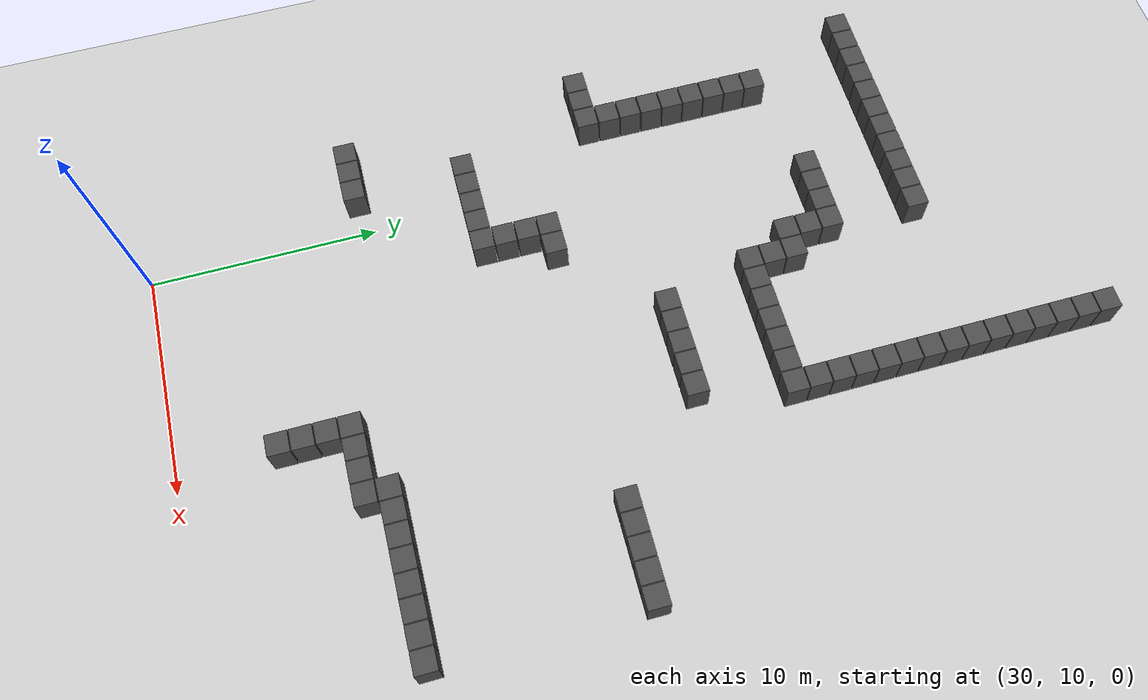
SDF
<sdf version="1.6">
 <world name="maze_world">
  <model name="ground_plane">
   <static>true</static>
   <pose>25.0 25.0 0 0 0 0</pose>
   <link name="link">
    <collision name="collision">
     <geometry><plane><normal>0 0 1</normal><size>50.0 50.0</size></plane></geometry>
    </collision>
    <visual name="visual">
     <geometry><plane><normal>0 0 1</normal><size>50.0 50.0</size></plane></geometry>
     <material><ambient>0.8 0.8 0.8 1</ambient><diffuse>0.8 0.8 0.8 1</diffuse></material>
    </visual>
   </link>
  </model>
  <model name="wall_0">
   <static>true</static>
   <pose>42.500 49.500 0.750 0 0 0</pose>
   <link name="link">
    <collision name="collision"><geometry><box><size>0.950 0.950 1.500</size></box></geometry></collision>
    <visual name="visual">
     <geometry><box><size>0.950 0.950 1.500</size></box></geometry>
     <material><ambient>0.2 0.2 0.2 1</ambient><diffuse>0.3 0.3 0.3 1</diffuse></material>
    </visual>
   </link>
  </model>
  <model name="wall_1">
   <static>true</static>
   <pose>42.500 48.500 0.750 0 0 0</pose>
   <link name="link">
    <collision name="collision"><geometry><box><size>0.950 0.950 1.500</size></box></geometry></collision>
    <visual name="visual">
     <geometry><box><size>0.950 0.950 1.500</size></box></geometry>
     <material><ambient>0.2 0.2 0.2 1</ambient><diffuse>0.3 0.3 0.3 1</diffuse></material>
    </visual>
   </link>
  </model>
  <model name="wall_2">
   <static>true</static>
   <pose>42.500 47.500 0.750 0 0 0</pose>
   <link name="link">
    <collision name="collision"><geometry><box><size>0.950 0.950 1.500</size></box></geometry></collision>
    <visual name="visual">
     <geometry><box><size>0.950 0.950 1.500</size></box></geometry>
     <material><ambient>0.2 0.2 0.2 1</ambient><diffuse>0.3 0.3 0.3 1</diffuse></material>
    </visual>
   </link>
  </model>
  <model name="wall_3">
   <static>true</static>
   <pose>42.500 46.500 0.750 0 0 0</pose>
   <link name="link">
    <collision name="collision"><geometry><box><size>0.950 0.950 1.500</size></box></geometry></collision>
    <visual name="visual">
     <geometry><box><size>0.950 0.950 1.500</size></box></geometry>
     <material><ambient>0.2 0.2 0.2 1</ambient><diffuse>0.3 0.3 0.3 1</diffuse></material>
    </visual>
   </link>
  </model>
  <model name="wall_5">
   <static>true</static>
   <pose>42.500 45.500 0.750 0 0 0</pose>
   <link name="link">
    <collision name="collision"><geometry><box><size>0.950 0.950 1.500</size></box></geometry></collision>
    <visual name="visual">
     <geometry><box><size>0.950 0.950 1.500</size></box></geometry>
     <material><ambient>0.2 0.2 0.2 1</ambient><diffuse>0.3 0.3 0.3 1</diffuse></material>
    </visual>
   </link>
  </model>
  <model name="wall_7">
   <static>true</static>
   <pose>42.500 44.500 0.750 0 0 0</pose>
   <link name="link">
    <collision name="collision"><geometry><box><size>0.950 0.950 1.500</size></box></geometry></collision>
    <visual name="visual">
     <geometry><box><size>0.950 0.950 1.500</size></box></geometry>
     <material><ambient>0.2 0.2 0.2 1</ambient><diffuse>0.3 0.3 0.3 1</diffuse></material>
    </visual>
   </link>
  </model>
  <model name="wall_10">
   <static>true</static>
   <pose>25.500 43.500 0.750 0 0 0</pose>
   <link name="link">
    <collision name="collision"><geometry><box><size>0.950 0.950 1.500</size></box></geometry></collision>
    <visual name="visual">
     <geometry><box><size>0.950 0.950 1.500</size></box></geometry>
     <material><ambient>0.2 0.2 0.2 1</ambient><diffuse>0.3 0.3 0.3 1</diffuse></material>
    </visual>
   </link>
  </model>
  <model name="wall_11">
   <static>true</static>
   <pose>26.500 43.500 0.750 0 0 0</pose>
   <link name="link">
    <collision name="collision"><geometry><box><size>0.950 0.950 1.500</size></box></geometry></collision>
    <visual name="visual">
     <geometry><box><size>0.950 0.950 1.500</size></box></geometry>
     <material><ambient>0.2 0.2 0.2 1</ambient><diffuse>0.3 0.3 0.3 1</diffuse></material>
    </visual>
   </link>
  </model>
  <model name="wall_12">
   <static>true</static>
   <pose>27.500 43.500 0.750 0 0 0</pose>
   <link name="link">
    <collision name="collision"><geometry><box><size>0.950 0.950 1.500</size></box></geometry></collision>
    <visual name="visual">
     <geometry><box><size>0.950 0.950 1.500</size></box></geometry>
     <material><ambient>0.2 0.2 0.2 1</ambient><diffuse>0.3 0.3 0.3 1</diffuse></material>
    </visual>
   </link>
  </model>
  <model name="wall_13">
   <static>true</static>
   <pose>28.500 43.500 0.750 0 0 0</pose>
   <link name="link">
    <collision name="collision"><geometry><box><size>0.950 0.950 1.500</size></box></geometry></collision>
    <visual name="visual">
     <geometry><box><size>0.950 0.950 1.500</size></box></geometry>
     <material><ambient>0.2 0.2 0.2 1</ambient><diffuse>0.3 0.3 0.3 1</diffuse></material>
    </visual>
   </link>
  </model>
  <model name="wall_14">
   <static>true</static>
   <pose>29.500 43.500 0.750 0 0 0</pose>
   <link name="link">
    <collision name="collision"><geometry><box><size>0.950 0.950 1.500</size></box></geometry></collision>
    <visual name="visual">
     <geometry><box><size>0.950 0.950 1.500</size></box></geometry>
     <material><ambient>0.2 0.2 0.2 1</ambient><diffuse>0.3 0.3 0.3 1</diffuse></material>
    </visual>
   </link>
  </model>
  <model name="wall_15">
   <static>true</static>
   <pose>30.500 43.500 0.750 0 0 0</pose>
   <link name="link">
    <collision name="collision"><geometry><box><size>0.950 0.950 1.500</size></box></geometry></collision>
    <visual name="visual">
     <geometry><box><size>0.950 0.950 1.500</size></box></geometry>
     <material><ambient>0.2 0.2 0.2 1</ambient><diffuse>0.3 0.3 0.3 1</diffuse></material>
    </visual>
   </link>
  </model>
  <model name="wall_16">
   <static>true</static>
   <pose>31.500 43.500 0.750 0 0 0</pose>
   <link name="link">
    <collision name="collision"><geometry><box><size>0.950 0.950 1.500</size></box></geometry></collision>
    <visual name="visual">
     <geometry><box><size>0.950 0.950 1.500</size></box></geometry>
     <material><ambient>0.2 0.2 0.2 1</ambient><diffuse>0.3 0.3 0.3 1</diffuse></material>
    </visual>
   </link>
  </model>
  <model name="wall_17">
   <static>true</static>
   <pose>32.500 43.500 0.750 0 0 0</pose>
   <link name="link">
    <collision name="collision"><geometry><box><size>0.950 0.950 1.500</size></box></geometry></collision>
    <visual name="visual">
     <geometry><box><size>0.950 0.950 1.500</size></box></geometry>
     <material><ambient>0.2 0.2 0.2 1</ambient><diffuse>0.3 0.3 0.3 1</diffuse></material>
    </visual>
   </link>
  </model>
  <model name="wall_18">
   <static>true</static>
   <pose>33.500 43.500 0.750 0 0 0</pose>
   <link name="link">
    <collision name="collision"><geometry><box><size>0.950 0.950 1.500</size></box></geometry></collision>
    <visual name="visual">
     <geometry><box><size>0.950 0.950 1.500</size></box></geometry>
     <material><ambient>0.2 0.2 0.2 1</ambient><diffuse>0.3 0.3 0.3 1</diffuse></material>
    </visual>
   </link>
  </model>
  <model name="wall_19">
   <static>true</static>
   <pose>34.500 43.500 0.750 0 0 0</pose>
   <link name="link">
    <collision name="collision"><geometry><box><size>0.950 0.950 1.500</size></box></geometry></collision>
    <visual name="visual">
     <geometry><box><size>0.950 0.950 1.500</size></box></geometry>
     <material><ambient>0.2 0.2 0.2 1</ambient><diffuse>0.3 0.3 0.3 1</diffuse></material>
    </visual>
   </link>
  </model>
  <model name="wall_20">
   <static>true</static>
   <pose>35.500 43.500 0.750 0 0 0</pose>
   <link name="link">
    <collision name="collision"><geometry><box><size>0.950 0.950 1.500</size></box></geometry></collision>
    <visual name="visual">
     <geometry><box><size>0.950 0.950 1.500</size></box></geometry>
     <material><ambient>0.2 0.2 0.2 1</ambient><diffuse>0.3 0.3 0.3 1</diffuse></material>
    </visual>
   </link>
  </model>
  <model name="wall_21">
   <static>true</static>
   <pose>42.500 43.500 0.750 0 0 0</pose>
   <link name="link">
    <collision name="collision"><geometry><box><size>0.950 0.950 1.500</size></box></geometry></collision>
    <visual name="visual">
     <geometry><box><size>0.950 0.950 1.500</size></box></geometry>
     <material><ambient>0.2 0.2 0.2 1</ambient><diffuse>0.3 0.3 0.3 1</diffuse></material>
    </visual>
   </link>
  </model>
  <model name="wall_27">
   <static>true</static>
   <pose>42.500 42.500 0.750 0 0 0</pose>
   <link name="link">
    <collision name="collision"><geometry><box><size>0.950 0.950 1.500</size></box></geometry></collision>
    <visual name="visual">
     <geometry><box><size>0.950 0.950 1.500</size></box></geometry>
     <material><ambient>0.2 0.2 0.2 1</ambient><diffuse>0.3 0.3 0.3 1</diffuse></material>
    </visual>
   </link>
  </model>
  <model name="wall_30">
   <static>true</static>
   <pose>42.500 41.500 0.750 0 0 0</pose>
   <link name="link">
    <collision name="collision"><geometry><box><size>0.950 0.950 1.500</size></box></geometry></collision>
    <visual name="visual">
     <geometry><box><size>0.950 0.950 1.500</size></box></geometry>
     <material><ambient>0.2 0.2 0.2 1</ambient><diffuse>0.3 0.3 0.3 1</diffuse></material>
    </visual>
   </link>
  </model>
  <model name="wall_33">
   <static>true</static>
   <pose>42.500 40.500 0.750 0 0 0</pose>
   <link name="link">
    <collision name="collision"><geometry><box><size>0.950 0.950 1.500</size></box></geometry></collision>
    <visual name="visual">
     <geometry><box><size>0.950 0.950 1.500</size></box></geometry>
     <material><ambient>0.2 0.2 0.2 1</ambient><diffuse>0.3 0.3 0.3 1</diffuse></material>
    </visual>
   </link>
  </model>
  <model name="wall_37">
   <static>true</static>
   <pose>32.500 39.500 0.750 0 0 0</pose>
   <link name="link">
    <collision name="collision"><geometry><box><size>0.950 0.950 1.500</size></box></geometry></collision>
    <visual name="visual">
     <geometry><box><size>0.950 0.950 1.500</size></box></geometry>
     <material><ambient>0.2 0.2 0.2 1</ambient><diffuse>0.3 0.3 0.3 1</diffuse></material>
    </visual>
   </link>
  </model>
  <model name="wall_38">
   <static>true</static>
   <pose>33.500 39.500 0.750 0 0 0</pose>
   <link name="link">
    <collision name="collision"><geometry><box><size>0.950 0.950 1.500</size></box></geometry></collision>
    <visual name="visual">
     <geometry><box><size>0.950 0.950 1.500</size></box></geometry>
     <material><ambient>0.2 0.2 0.2 1</ambient><diffuse>0.3 0.3 0.3 1</diffuse></material>
    </visual>
   </link>
  </model>
  <model name="wall_39">
   <static>true</static>
   <pose>34.500 39.500 0.750 0 0 0</pose>
   <link name="link">
    <collision name="collision"><geometry><box><size>0.950 0.950 1.500</size></box></geometry></collision>
    <visual name="visual">
     <geometry><box><size>0.950 0.950 1.500</size></box></geometry>
     <material><ambient>0.2 0.2 0.2 1</ambient><diffuse>0.3 0.3 0.3 1</diffuse></material>
    </visual>
   </link>
  </model>
  <model name="wall_40">
   <static>true</static>
   <pose>35.500 39.500 0.750 0 0 0</pose>
   <link name="link">
    <collision name="collision"><geometry><box><size>0.950 0.950 1.500</size></box></geometry></collision>
    <visual name="visual">
     <geometry><box><size>0.950 0.950 1.500</size></box></geometry>
     <material><ambient>0.2 0.2 0.2 1</ambient><diffuse>0.3 0.3 0.3 1</diffuse></material>
    </visual>
   </link>
  </model>
  <model name="wall_41">
   <static>true</static>
   <pose>42.500 39.500 0.750 0 0 0</pose>
   <link name="link">
    <collision name="collision"><geometry><box><size>0.950 0.950 1.500</size></box></geometry></collision>
    <visual name="visual">
     <geometry><box><size>0.950 0.950 1.500</size></box></geometry>
     <material><ambient>0.2 0.2 0.2 1</ambient><diffuse>0.3 0.3 0.3 1</diffuse></material>
    </visual>
   </link>
  </model>
  <model name="wall_55">
   <static>true</static>
   <pose>27.500 38.500 0.750 0 0 0</pose>
   <link name="link">
    <collision name="collision"><geometry><box><size>0.950 0.950 1.500</size></box></geometry></collision>
    <visual name="visual">
     <geometry><box><size>0.950 0.950 1.500</size></box></geometry>
     <material><ambient>0.2 0.2 0.2 1</ambient><diffuse>0.3 0.3 0.3 1</diffuse></material>
    </visual>
   </link>
  </model>
  <model name="wall_56">
   <static>true</static>
   <pose>35.500 38.500 0.750 0 0 0</pose>
   <link name="link">
    <collision name="collision"><geometry><box><size>0.950 0.950 1.500</size></box></geometry></collision>
    <visual name="visual">
     <geometry><box><size>0.950 0.950 1.500</size></box></geometry>
     <material><ambient>0.2 0.2 0.2 1</ambient><diffuse>0.3 0.3 0.3 1</diffuse></material>
    </visual>
   </link>
  </model>
  <model name="wall_57">
   <static>true</static>
   <pose>42.500 38.500 0.750 0 0 0</pose>
   <link name="link">
    <collision name="collision"><geometry><box><size>0.950 0.950 1.500</size></box></geometry></collision>
    <visual name="visual">
     <geometry><box><size>0.950 0.950 1.500</size></box></geometry>
     <material><ambient>0.2 0.2 0.2 1</ambient><diffuse>0.3 0.3 0.3 1</diffuse></material>
    </visual>
   </link>
  </model>
  <model name="wall_62">
   <static>true</static>
   <pose>27.500 37.500 0.750 0 0 0</pose>
   <link name="link">
    <collision name="collision"><geometry><box><size>0.950 0.950 1.500</size></box></geometry></collision>
    <visual name="visual">
     <geometry><box><size>0.950 0.950 1.500</size></box></geometry>
     <material><ambient>0.2 0.2 0.2 1</ambient><diffuse>0.3 0.3 0.3 1</diffuse></material>
    </visual>
   </link>
  </model>
  <model name="wall_63">
   <static>true</static>
   <pose>35.500 37.500 0.750 0 0 0</pose>
   <link name="link">
    <collision name="collision"><geometry><box><size>0.950 0.950 1.500</size></box></geometry></collision>
    <visual name="visual">
     <geometry><box><size>0.950 0.950 1.500</size></box></geometry>
     <material><ambient>0.2 0.2 0.2 1</ambient><diffuse>0.3 0.3 0.3 1</diffuse></material>
    </visual>
   </link>
  </model>
  <model name="wall_64">
   <static>true</static>
   <pose>36.500 37.500 0.750 0 0 0</pose>
   <link name="link">
    <collision name="collision"><geometry><box><size>0.950 0.950 1.500</size></box></geometry></collision>
    <visual name="visual">
     <geometry><box><size>0.950 0.950 1.500</size></box></geometry>
     <material><ambient>0.2 0.2 0.2 1</ambient><diffuse>0.3 0.3 0.3 1</diffuse></material>
    </visual>
   </link>
  </model>
  <model name="wall_65">
   <static>true</static>
   <pose>42.500 37.500 0.750 0 0 0</pose>
   <link name="link">
    <collision name="collision"><geometry><box><size>0.950 0.950 1.500</size></box></geometry></collision>
    <visual name="visual">
     <geometry><box><size>0.950 0.950 1.500</size></box></geometry>
     <material><ambient>0.2 0.2 0.2 1</ambient><diffuse>0.3 0.3 0.3 1</diffuse></material>
    </visual>
   </link>
  </model>
  <model name="wall_67">
   <static>true</static>
   <pose>27.500 36.500 0.750 0 0 0</pose>
   <link name="link">
    <collision name="collision"><geometry><box><size>0.950 0.950 1.500</size></box></geometry></collision>
    <visual name="visual">
     <geometry><box><size>0.950 0.950 1.500</size></box></geometry>
     <material><ambient>0.2 0.2 0.2 1</ambient><diffuse>0.3 0.3 0.3 1</diffuse></material>
    </visual>
   </link>
  </model>
  <model name="wall_68">
   <static>true</static>
   <pose>36.500 36.500 0.750 0 0 0</pose>
   <link name="link">
    <collision name="collision"><geometry><box><size>0.950 0.950 1.500</size></box></geometry></collision>
    <visual name="visual">
     <geometry><box><size>0.950 0.950 1.500</size></box></geometry>
     <material><ambient>0.2 0.2 0.2 1</ambient><diffuse>0.3 0.3 0.3 1</diffuse></material>
    </visual>
   </link>
  </model>
  <model name="wall_69">
   <static>true</static>
   <pose>42.500 36.500 0.750 0 0 0</pose>
   <link name="link">
    <collision name="collision"><geometry><box><size>0.950 0.950 1.500</size></box></geometry></collision>
    <visual name="visual">
     <geometry><box><size>0.950 0.950 1.500</size></box></geometry>
     <material><ambient>0.2 0.2 0.2 1</ambient><diffuse>0.3 0.3 0.3 1</diffuse></material>
    </visual>
   </link>
  </model>
  <model name="wall_71">
   <static>true</static>
   <pose>27.500 35.500 0.750 0 0 0</pose>
   <link name="link">
    <collision name="collision"><geometry><box><size>0.950 0.950 1.500</size></box></geometry></collision>
    <visual name="visual">
     <geometry><box><size>0.950 0.950 1.500</size></box></geometry>
     <material><ambient>0.2 0.2 0.2 1</ambient><diffuse>0.3 0.3 0.3 1</diffuse></material>
    </visual>
   </link>
  </model>
  <model name="wall_72">
   <static>true</static>
   <pose>36.500 35.500 0.750 0 0 0</pose>
   <link name="link">
    <collision name="collision"><geometry><box><size>0.950 0.950 1.500</size></box></geometry></collision>
    <visual name="visual">
     <geometry><box><size>0.950 0.950 1.500</size></box></geometry>
     <material><ambient>0.2 0.2 0.2 1</ambient><diffuse>0.3 0.3 0.3 1</diffuse></material>
    </visual>
   </link>
  </model>
  <model name="wall_73">
   <static>true</static>
   <pose>37.500 35.500 0.750 0 0 0</pose>
   <link name="link">
    <collision name="collision"><geometry><box><size>0.950 0.950 1.500</size></box></geometry></collision>
    <visual name="visual">
     <geometry><box><size>0.950 0.950 1.500</size></box></geometry>
     <material><ambient>0.2 0.2 0.2 1</ambient><diffuse>0.3 0.3 0.3 1</diffuse></material>
    </visual>
   </link>
  </model>
  <model name="wall_74">
   <static>true</static>
   <pose>38.500 35.500 0.750 0 0 0</pose>
   <link name="link">
    <collision name="collision"><geometry><box><size>0.950 0.950 1.500</size></box></geometry></collision>
    <visual name="visual">
     <geometry><box><size>0.950 0.950 1.500</size></box></geometry>
     <material><ambient>0.2 0.2 0.2 1</ambient><diffuse>0.3 0.3 0.3 1</diffuse></material>
    </visual>
   </link>
  </model>
  <model name="wall_75">
   <static>true</static>
   <pose>39.500 35.500 0.750 0 0 0</pose>
   <link name="link">
    <collision name="collision"><geometry><box><size>0.950 0.950 1.500</size></box></geometry></collision>
    <visual name="visual">
     <geometry><box><size>0.950 0.950 1.500</size></box></geometry>
     <material><ambient>0.2 0.2 0.2 1</ambient><diffuse>0.3 0.3 0.3 1</diffuse></material>
    </visual>
   </link>
  </model>
  <model name="wall_76">
   <static>true</static>
   <pose>40.500 35.500 0.750 0 0 0</pose>
   <link name="link">
    <collision name="collision"><geometry><box><size>0.950 0.950 1.500</size></box></geometry></collision>
    <visual name="visual">
     <geometry><box><size>0.950 0.950 1.500</size></box></geometry>
     <material><ambient>0.2 0.2 0.2 1</ambient><diffuse>0.3 0.3 0.3 1</diffuse></material>
    </visual>
   </link>
  </model>
  <model name="wall_77">
   <static>true</static>
   <pose>41.500 35.500 0.750 0 0 0</pose>
   <link name="link">
    <collision name="collision"><geometry><box><size>0.950 0.950 1.500</size></box></geometry></collision>
    <visual name="visual">
     <geometry><box><size>0.950 0.950 1.500</size></box></geometry>
     <material><ambient>0.2 0.2 0.2 1</ambient><diffuse>0.3 0.3 0.3 1</diffuse></material>
    </visual>
   </link>
  </model>
  <model name="wall_78">
   <static>true</static>
   <pose>42.500 35.500 0.750 0 0 0</pose>
   <link name="link">
    <collision name="collision"><geometry><box><size>0.950 0.950 1.500</size></box></geometry></collision>
    <visual name="visual">
     <geometry><box><size>0.950 0.950 1.500</size></box></geometry>
     <material><ambient>0.2 0.2 0.2 1</ambient><diffuse>0.3 0.3 0.3 1</diffuse></material>
    </visual>
   </link>
  </model>
  <model name="wall_80">
   <static>true</static>
   <pose>27.500 34.500 0.750 0 0 0</pose>
   <link name="link">
    <collision name="collision"><geometry><box><size>0.950 0.950 1.500</size></box></geometry></collision>
    <visual name="visual">
     <geometry><box><size>0.950 0.950 1.500</size></box></geometry>
     <material><ambient>0.2 0.2 0.2 1</ambient><diffuse>0.3 0.3 0.3 1</diffuse></material>
    </visual>
   </link>
  </model>
  <model name="wall_82">
   <static>true</static>
   <pose>27.500 33.500 0.750 0 0 0</pose>
   <link name="link">
    <collision name="collision"><geometry><box><size>0.950 0.950 1.500</size></box></geometry></collision>
    <visual name="visual">
     <geometry><box><size>0.950 0.950 1.500</size></box></geometry>
     <material><ambient>0.2 0.2 0.2 1</ambient><diffuse>0.3 0.3 0.3 1</diffuse></material>
    </visual>
   </link>
  </model>
  <model name="wall_84">
   <static>true</static>
   <pose>27.500 32.500 0.750 0 0 0</pose>
   <link name="link">
    <collision name="collision"><geometry><box><size>0.950 0.950 1.500</size></box></geometry></collision>
    <visual name="visual">
     <geometry><box><size>0.950 0.950 1.500</size></box></geometry>
     <material><ambient>0.2 0.2 0.2 1</ambient><diffuse>0.3 0.3 0.3 1</diffuse></material>
    </visual>
   </link>
  </model>
  <model name="wall_86">
   <static>true</static>
   <pose>27.500 31.500 0.750 0 0 0</pose>
   <link name="link">
    <collision name="collision"><geometry><box><size>0.950 0.950 1.500</size></box></geometry></collision>
    <visual name="visual">
     <geometry><box><size>0.950 0.950 1.500</size></box></geometry>
     <material><ambient>0.2 0.2 0.2 1</ambient><diffuse>0.3 0.3 0.3 1</diffuse></material>
    </visual>
   </link>
  </model>
  <model name="wall_87">
   <static>true</static>
   <pose>37.500 31.500 0.750 0 0 0</pose>
   <link name="link">
    <collision name="collision"><geometry><box><size>0.950 0.950 1.500</size></box></geometry></collision>
    <visual name="visual">
     <geometry><box><size>0.950 0.950 1.500</size></box></geometry>
     <material><ambient>0.2 0.2 0.2 1</ambient><diffuse>0.3 0.3 0.3 1</diffuse></material>
    </visual>
   </link>
  </model>
  <model name="wall_88">
   <static>true</static>
   <pose>38.500 31.500 0.750 0 0 0</pose>
   <link name="link">
    <collision name="collision"><geometry><box><size>0.950 0.950 1.500</size></box></geometry></collision>
    <visual name="visual">
     <geometry><box><size>0.950 0.950 1.500</size></box></geometry>
     <material><ambient>0.2 0.2 0.2 1</ambient><diffuse>0.3 0.3 0.3 1</diffuse></material>
    </visual>
   </link>
  </model>
  <model name="wall_89">
   <static>true</static>
   <pose>39.500 31.500 0.750 0 0 0</pose>
   <link name="link">
    <collision name="collision"><geometry><box><size>0.950 0.950 1.500</size></box></geometry></collision>
    <visual name="visual">
     <geometry><box><size>0.950 0.950 1.500</size></box></geometry>
     <material><ambient>0.2 0.2 0.2 1</ambient><diffuse>0.3 0.3 0.3 1</diffuse></material>
    </visual>
   </link>
  </model>
  <model name="wall_90">
   <static>true</static>
   <pose>40.500 31.500 0.750 0 0 0</pose>
   <link name="link">
    <collision name="collision"><geometry><box><size>0.950 0.950 1.500</size></box></geometry></collision>
    <visual name="visual">
     <geometry><box><size>0.950 0.950 1.500</size></box></geometry>
     <material><ambient>0.2 0.2 0.2 1</ambient><diffuse>0.3 0.3 0.3 1</diffuse></material>
    </visual>
   </link>
  </model>
  <model name="wall_91">
   <static>true</static>
   <pose>41.500 31.500 0.750 0 0 0</pose>
   <link name="link">
    <collision name="collision"><geometry><box><size>0.950 0.950 1.500</size></box></geometry></collision>
    <visual name="visual">
     <geometry><box><size>0.950 0.950 1.500</size></box></geometry>
     <material><ambient>0.2 0.2 0.2 1</ambient><diffuse>0.3 0.3 0.3 1</diffuse></material>
    </visual>
   </link>
  </model>
  <model name="wall_101">
   <static>true</static>
   <pose>25.500 30.500 0.750 0 0 0</pose>
   <link name="link">
    <collision name="collision"><geometry><box><size>0.950 0.950 1.500</size></box></geometry></collision>
    <visual name="visual">
     <geometry><box><size>0.950 0.950 1.500</size></box></geometry>
     <material><ambient>0.2 0.2 0.2 1</ambient><diffuse>0.3 0.3 0.3 1</diffuse></material>
    </visual>
   </link>
  </model>
  <model name="wall_102">
   <static>true</static>
   <pose>26.500 30.500 0.750 0 0 0</pose>
   <link name="link">
    <collision name="collision"><geometry><box><size>0.950 0.950 1.500</size></box></geometry></collision>
    <visual name="visual">
     <geometry><box><size>0.950 0.950 1.500</size></box></geometry>
     <material><ambient>0.2 0.2 0.2 1</ambient><diffuse>0.3 0.3 0.3 1</diffuse></material>
    </visual>
   </link>
  </model>
  <model name="wall_103">
   <static>true</static>
   <pose>27.500 30.500 0.750 0 0 0</pose>
   <link name="link">
    <collision name="collision"><geometry><box><size>0.950 0.950 1.500</size></box></geometry></collision>
    <visual name="visual">
     <geometry><box><size>0.950 0.950 1.500</size></box></geometry>
     <material><ambient>0.2 0.2 0.2 1</ambient><diffuse>0.3 0.3 0.3 1</diffuse></material>
    </visual>
   </link>
  </model>
  <model name="wall_110">
   <static>true</static>
   <pose>32.500 27.500 0.750 0 0 0</pose>
   <link name="link">
    <collision name="collision"><geometry><box><size>0.950 0.950 1.500</size></box></geometry></collision>
    <visual name="visual">
     <geometry><box><size>0.950 0.950 1.500</size></box></geometry>
     <material><ambient>0.2 0.2 0.2 1</ambient><diffuse>0.3 0.3 0.3 1</diffuse></material>
    </visual>
   </link>
  </model>
  <model name="wall_111">
   <static>true</static>
   <pose>33.500 27.500 0.750 0 0 0</pose>
   <link name="link">
    <collision name="collision"><geometry><box><size>0.950 0.950 1.500</size></box></geometry></collision>
    <visual name="visual">
     <geometry><box><size>0.950 0.950 1.500</size></box></geometry>
     <material><ambient>0.2 0.2 0.2 1</ambient><diffuse>0.3 0.3 0.3 1</diffuse></material>
    </visual>
   </link>
  </model>
  <model name="wall_112">
   <static>true</static>
   <pose>45.500 27.500 0.750 0 0 0</pose>
   <link name="link">
    <collision name="collision"><geometry><box><size>0.950 0.950 1.500</size></box></geometry></collision>
    <visual name="visual">
     <geometry><box><size>0.950 0.950 1.500</size></box></geometry>
     <material><ambient>0.2 0.2 0.2 1</ambient><diffuse>0.3 0.3 0.3 1</diffuse></material>
    </visual>
   </link>
  </model>
  <model name="wall_113">
   <static>true</static>
   <pose>46.500 27.500 0.750 0 0 0</pose>
   <link name="link">
    <collision name="collision"><geometry><box><size>0.950 0.950 1.500</size></box></geometry></collision>
    <visual name="visual">
     <geometry><box><size>0.950 0.950 1.500</size></box></geometry>
     <material><ambient>0.2 0.2 0.2 1</ambient><diffuse>0.3 0.3 0.3 1</diffuse></material>
    </visual>
   </link>
  </model>
  <model name="wall_114">
   <static>true</static>
   <pose>47.500 27.500 0.750 0 0 0</pose>
   <link name="link">
    <collision name="collision"><geometry><box><size>0.950 0.950 1.500</size></box></geometry></collision>
    <visual name="visual">
     <geometry><box><size>0.950 0.950 1.500</size></box></geometry>
     <material><ambient>0.2 0.2 0.2 1</ambient><diffuse>0.3 0.3 0.3 1</diffuse></material>
    </visual>
   </link>
  </model>
  <model name="wall_115">
   <static>true</static>
   <pose>48.500 27.500 0.750 0 0 0</pose>
   <link name="link">
    <collision name="collision"><geometry><box><size>0.950 0.950 1.500</size></box></geometry></collision>
    <visual name="visual">
     <geometry><box><size>0.950 0.950 1.500</size></box></geometry>
     <material><ambient>0.2 0.2 0.2 1</ambient><diffuse>0.3 0.3 0.3 1</diffuse></material>
    </visual>
   </link>
  </model>
  <model name="wall_116">
   <static>true</static>
   <pose>49.500 27.500 0.750 0 0 0</pose>
   <link name="link">
    <collision name="collision"><geometry><box><size>0.950 0.950 1.500</size></box></geometry></collision>
    <visual name="visual">
     <geometry><box><size>0.950 0.950 1.500</size></box></geometry>
     <material><ambient>0.2 0.2 0.2 1</ambient><diffuse>0.3 0.3 0.3 1</diffuse></material>
    </visual>
   </link>
  </model>
  <model name="wall_118">
   <static>true</static>
   <pose>32.500 26.500 0.750 0 0 0</pose>
   <link name="link">
    <collision name="collision"><geometry><box><size>0.950 0.950 1.500</size></box></geometry></collision>
    <visual name="visual">
     <geometry><box><size>0.950 0.950 1.500</size></box></geometry>
     <material><ambient>0.2 0.2 0.2 1</ambient><diffuse>0.3 0.3 0.3 1</diffuse></material>
    </visual>
   </link>
  </model>
  <model name="wall_120">
   <static>true</static>
   <pose>32.500 25.500 0.750 0 0 0</pose>
   <link name="link">
    <collision name="collision"><geometry><box><size>0.950 0.950 1.500</size></box></geometry></collision>
    <visual name="visual">
     <geometry><box><size>0.950 0.950 1.500</size></box></geometry>
     <material><ambient>0.2 0.2 0.2 1</ambient><diffuse>0.3 0.3 0.3 1</diffuse></material>
    </visual>
   </link>
  </model>
  <model name="wall_125">
   <static>true</static>
   <pose>28.500 24.500 0.750 0 0 0</pose>
   <link name="link">
    <collision name="collision"><geometry><box><size>0.950 0.950 1.500</size></box></geometry></collision>
    <visual name="visual">
     <geometry><box><size>0.950 0.950 1.500</size></box></geometry>
     <material><ambient>0.2 0.2 0.2 1</ambient><diffuse>0.3 0.3 0.3 1</diffuse></material>
    </visual>
   </link>
  </model>
  <model name="wall_126">
   <static>true</static>
   <pose>29.500 24.500 0.750 0 0 0</pose>
   <link name="link">
    <collision name="collision"><geometry><box><size>0.950 0.950 1.500</size></box></geometry></collision>
    <visual name="visual">
     <geometry><box><size>0.950 0.950 1.500</size></box></geometry>
     <material><ambient>0.2 0.2 0.2 1</ambient><diffuse>0.3 0.3 0.3 1</diffuse></material>
    </visual>
   </link>
  </model>
  <model name="wall_127">
   <static>true</static>
   <pose>30.500 24.500 0.750 0 0 0</pose>
   <link name="link">
    <collision name="collision"><geometry><box><size>0.950 0.950 1.500</size></box></geometry></collision>
    <visual name="visual">
     <geometry><box><size>0.950 0.950 1.500</size></box></geometry>
     <material><ambient>0.2 0.2 0.2 1</ambient><diffuse>0.3 0.3 0.3 1</diffuse></material>
    </visual>
   </link>
  </model>
  <model name="wall_128">
   <static>true</static>
   <pose>31.500 24.500 0.750 0 0 0</pose>
   <link name="link">
    <collision name="collision"><geometry><box><size>0.950 0.950 1.500</size></box></geometry></collision>
    <visual name="visual">
     <geometry><box><size>0.950 0.950 1.500</size></box></geometry>
     <material><ambient>0.2 0.2 0.2 1</ambient><diffuse>0.3 0.3 0.3 1</diffuse></material>
    </visual>
   </link>
  </model>
  <model name="wall_129">
   <static>true</static>
   <pose>32.500 24.500 0.750 0 0 0</pose>
   <link name="link">
    <collision name="collision"><geometry><box><size>0.950 0.950 1.500</size></box></geometry></collision>
    <visual name="visual">
     <geometry><box><size>0.950 0.950 1.500</size></box></geometry>
     <material><ambient>0.2 0.2 0.2 1</ambient><diffuse>0.3 0.3 0.3 1</diffuse></material>
    </visual>
   </link>
  </model>
  <model name="wall_148">
   <static>true</static>
   <pose>26.500 19.500 0.750 0 0 0</pose>
   <link name="link">
    <collision name="collision"><geometry><box><size>0.950 0.950 1.500</size></box></geometry></collision>
    <visual name="visual">
     <geometry><box><size>0.950 0.950 1.500</size></box></geometry>
     <material><ambient>0.2 0.2 0.2 1</ambient><diffuse>0.3 0.3 0.3 1</diffuse></material>
    </visual>
   </link>
  </model>
  <model name="wall_149">
   <static>true</static>
   <pose>27.500 19.500 0.750 0 0 0</pose>
   <link name="link">
    <collision name="collision"><geometry><box><size>0.950 0.950 1.500</size></box></geometry></collision>
    <visual name="visual">
     <geometry><box><size>0.950 0.950 1.500</size></box></geometry>
     <material><ambient>0.2 0.2 0.2 1</ambient><diffuse>0.3 0.3 0.3 1</diffuse></material>
    </visual>
   </link>
  </model>
  <model name="wall_150">
   <static>true</static>
   <pose>28.500 19.500 0.750 0 0 0</pose>
   <link name="link">
    <collision name="collision"><geometry><box><size>0.950 0.950 1.500</size></box></geometry></collision>
    <visual name="visual">
     <geometry><box><size>0.950 0.950 1.500</size></box></geometry>
     <material><ambient>0.2 0.2 0.2 1</ambient><diffuse>0.3 0.3 0.3 1</diffuse></material>
    </visual>
   </link>
  </model>
  <model name="wall_152">
   <static>true</static>
   <pose>42.500 18.500 0.750 0 0 0</pose>
   <link name="link">
    <collision name="collision"><geometry><box><size>0.950 0.950 1.500</size></box></geometry></collision>
    <visual name="visual">
     <geometry><box><size>0.950 0.950 1.500</size></box></geometry>
     <material><ambient>0.2 0.2 0.2 1</ambient><diffuse>0.3 0.3 0.3 1</diffuse></material>
    </visual>
   </link>
  </model>
  <model name="wall_153">
   <static>true</static>
   <pose>43.500 18.500 0.750 0 0 0</pose>
   <link name="link">
    <collision name="collision"><geometry><box><size>0.950 0.950 1.500</size></box></geometry></collision>
    <visual name="visual">
     <geometry><box><size>0.950 0.950 1.500</size></box></geometry>
     <material><ambient>0.2 0.2 0.2 1</ambient><diffuse>0.3 0.3 0.3 1</diffuse></material>
    </visual>
   </link>
  </model>
  <model name="wall_154">
   <static>true</static>
   <pose>44.500 18.500 0.750 0 0 0</pose>
   <link name="link">
    <collision name="collision"><geometry><box><size>0.950 0.950 1.500</size></box></geometry></collision>
    <visual name="visual">
     <geometry><box><size>0.950 0.950 1.500</size></box></geometry>
     <material><ambient>0.2 0.2 0.2 1</ambient><diffuse>0.3 0.3 0.3 1</diffuse></material>
    </visual>
   </link>
  </model>
  <model name="wall_155">
   <static>true</static>
   <pose>45.500 18.500 0.750 0 0 0</pose>
   <link name="link">
    <collision name="collision"><geometry><box><size>0.950 0.950 1.500</size></box></geometry></collision>
    <visual name="visual">
     <geometry><box><size>0.950 0.950 1.500</size></box></geometry>
     <material><ambient>0.2 0.2 0.2 1</ambient><diffuse>0.3 0.3 0.3 1</diffuse></material>
    </visual>
   </link>
  </model>
  <model name="wall_156">
   <static>true</static>
   <pose>46.500 18.500 0.750 0 0 0</pose>
   <link name="link">
    <collision name="collision"><geometry><box><size>0.950 0.950 1.500</size></box></geometry></collision>
    <visual name="visual">
     <geometry><box><size>0.950 0.950 1.500</size></box></geometry>
     <material><ambient>0.2 0.2 0.2 1</ambient><diffuse>0.3 0.3 0.3 1</diffuse></material>
    </visual>
   </link>
  </model>
  <model name="wall_157">
   <static>true</static>
   <pose>47.500 18.500 0.750 0 0 0</pose>
   <link name="link">
    <collision name="collision"><geometry><box><size>0.950 0.950 1.500</size></box></geometry></collision>
    <visual name="visual">
     <geometry><box><size>0.950 0.950 1.500</size></box></geometry>
     <material><ambient>0.2 0.2 0.2 1</ambient><diffuse>0.3 0.3 0.3 1</diffuse></material>
    </visual>
   </link>
  </model>
  <model name="wall_158">
   <static>true</static>
   <pose>48.500 18.500 0.750 0 0 0</pose>
   <link name="link">
    <collision name="collision"><geometry><box><size>0.950 0.950 1.500</size></box></geometry></collision>
    <visual name="visual">
     <geometry><box><size>0.950 0.950 1.500</size></box></geometry>
     <material><ambient>0.2 0.2 0.2 1</ambient><diffuse>0.3 0.3 0.3 1</diffuse></material>
    </visual>
   </link>
  </model>
  <model name="wall_159">
   <static>true</static>
   <pose>49.500 18.500 0.750 0 0 0</pose>
   <link name="link">
    <collision name="collision"><geometry><box><size>0.950 0.950 1.500</size></box></geometry></collision>
    <visual name="visual">
     <geometry><box><size>0.950 0.950 1.500</size></box></geometry>
     <material><ambient>0.2 0.2 0.2 1</ambient><diffuse>0.3 0.3 0.3 1</diffuse></material>
    </visual>
   </link>
  </model>
  <model name="wall_161">
   <static>true</static>
   <pose>39.500 17.500 0.750 0 0 0</pose>
   <link name="link">
    <collision name="collision"><geometry><box><size>0.950 0.950 1.500</size></box></geometry></collision>
    <visual name="visual">
     <geometry><box><size>0.950 0.950 1.500</size></box></geometry>
     <material><ambient>0.2 0.2 0.2 1</ambient><diffuse>0.3 0.3 0.3 1</diffuse></material>
    </visual>
   </link>
  </model>
  <model name="wall_162">
   <static>true</static>
   <pose>40.500 17.500 0.750 0 0 0</pose>
   <link name="link">
    <collision name="collision"><geometry><box><size>0.950 0.950 1.500</size></box></geometry></collision>
    <visual name="visual">
     <geometry><box><size>0.950 0.950 1.500</size></box></geometry>
     <material><ambient>0.2 0.2 0.2 1</ambient><diffuse>0.3 0.3 0.3 1</diffuse></material>
    </visual>
   </link>
  </model>
  <model name="wall_163">
   <static>true</static>
   <pose>41.500 17.500 0.750 0 0 0</pose>
   <link name="link">
    <collision name="collision"><geometry><box><size>0.950 0.950 1.500</size></box></geometry></collision>
    <visual name="visual">
     <geometry><box><size>0.950 0.950 1.500</size></box></geometry>
     <material><ambient>0.2 0.2 0.2 1</ambient><diffuse>0.3 0.3 0.3 1</diffuse></material>
    </visual>
   </link>
  </model>
  <model name="wall_164">
   <static>true</static>
   <pose>42.500 17.500 0.750 0 0 0</pose>
   <link name="link">
    <collision name="collision"><geometry><box><size>0.950 0.950 1.500</size></box></geometry></collision>
    <visual name="visual">
     <geometry><box><size>0.950 0.950 1.500</size></box></geometry>
     <material><ambient>0.2 0.2 0.2 1</ambient><diffuse>0.3 0.3 0.3 1</diffuse></material>
    </visual>
   </link>
  </model>
  <model name="wall_165">
   <static>true</static>
   <pose>39.500 16.500 0.750 0 0 0</pose>
   <link name="link">
    <collision name="collision"><geometry><box><size>0.950 0.950 1.500</size></box></geometry></collision>
    <visual name="visual">
     <geometry><box><size>0.950 0.950 1.500</size></box></geometry>
     <material><ambient>0.2 0.2 0.2 1</ambient><diffuse>0.3 0.3 0.3 1</diffuse></material>
    </visual>
   </link>
  </model>
  <model name="wall_170">
   <static>true</static>
   <pose>39.500 15.500 0.750 0 0 0</pose>
   <link name="link">
    <collision name="collision"><geometry><box><size>0.950 0.950 1.500</size></box></geometry></collision>
    <visual name="visual">
     <geometry><box><size>0.950 0.950 1.500</size></box></geometry>
     <material><ambient>0.2 0.2 0.2 1</ambient><diffuse>0.3 0.3 0.3 1</diffuse></material>
    </visual>
   </link>
  </model>
  <model name="wall_175">
   <static>true</static>
   <pose>39.500 14.500 0.750 0 0 0</pose>
   <link name="link">
    <collision name="collision"><geometry><box><size>0.950 0.950 1.500</size></box></geometry></collision>
    <visual name="visual">
     <geometry><box><size>0.950 0.950 1.500</size></box></geometry>
     <material><ambient>0.2 0.2 0.2 1</ambient><diffuse>0.3 0.3 0.3 1</diffuse></material>
    </visual>
   </link>
  </model>
 </world>
</sdf>
